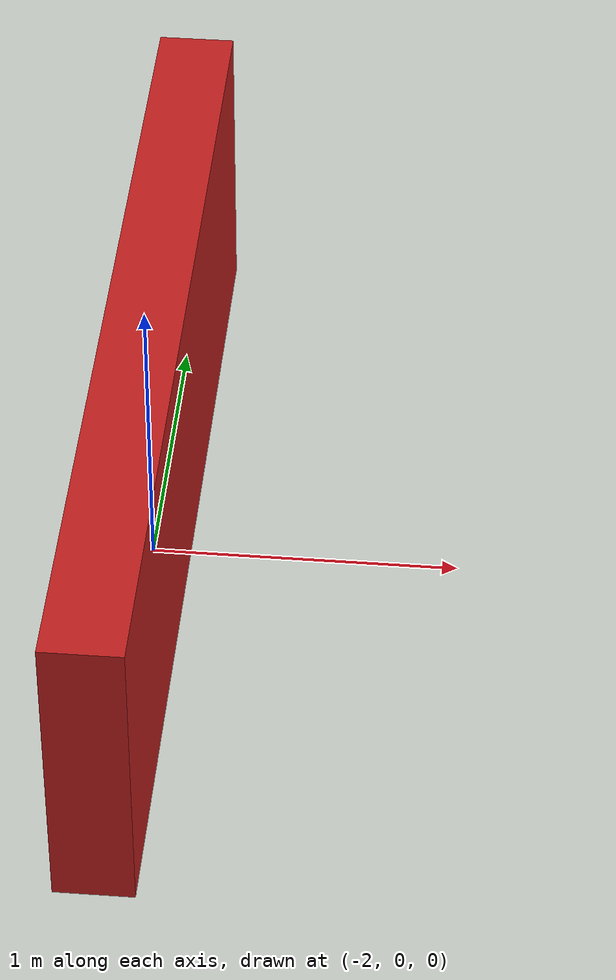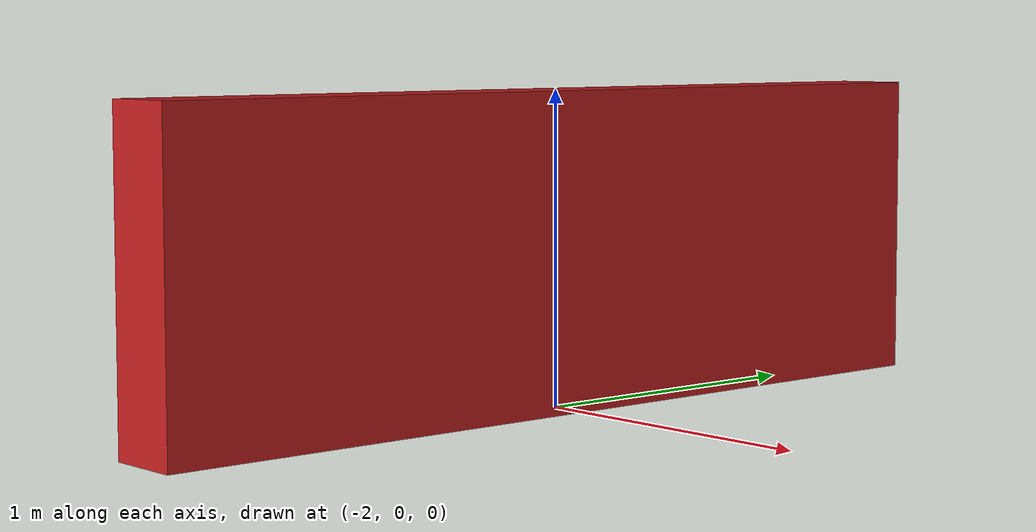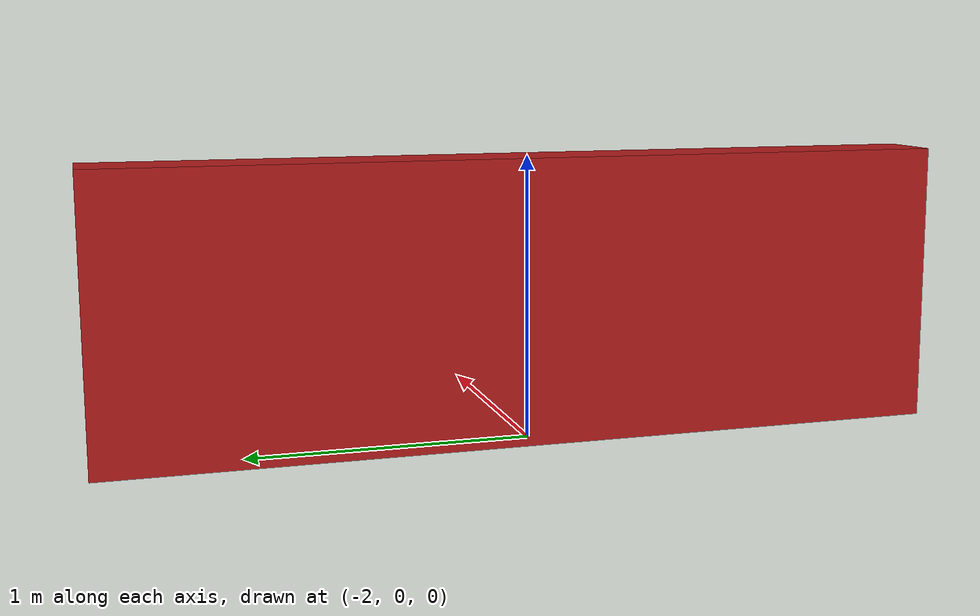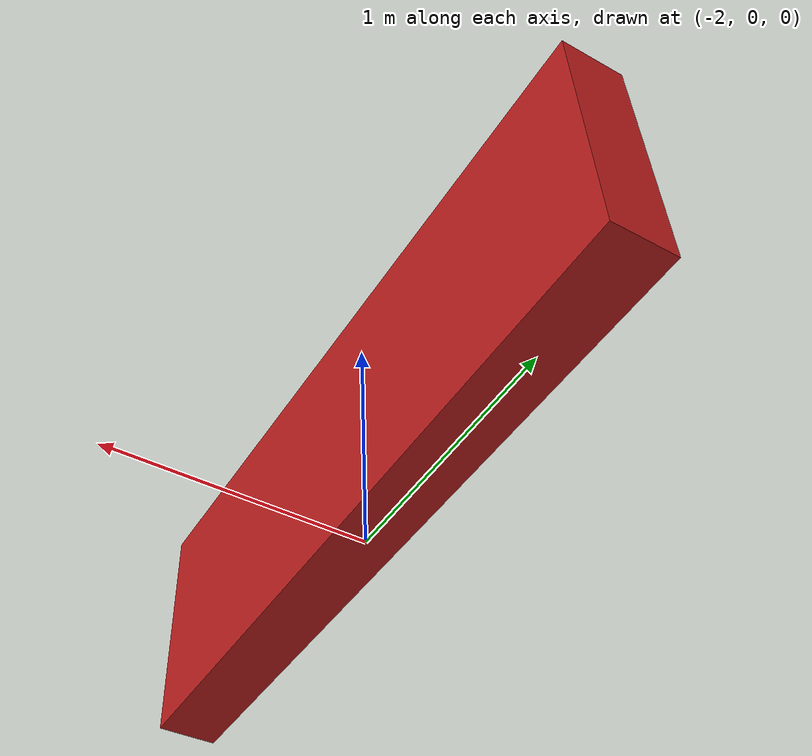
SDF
<?xml version="1.0"?>
<sdf version="1.10">
  <model name="blocked_path_obstacle">
    <static>true</static>
    <pose>-2 0 0.5 0 0 0</pose>
    <link name="wall">
      <collision name="collision">
        <geometry><box><size>0.25 3 1</size></box></geometry>
      </collision>
      <visual name="visual">
        <geometry><box><size>0.25 3 1</size></box></geometry>
        <material><diffuse>0.75 0.12 0.12 1</diffuse></material>
      </visual>
    </link>
  </model>
</sdf>
